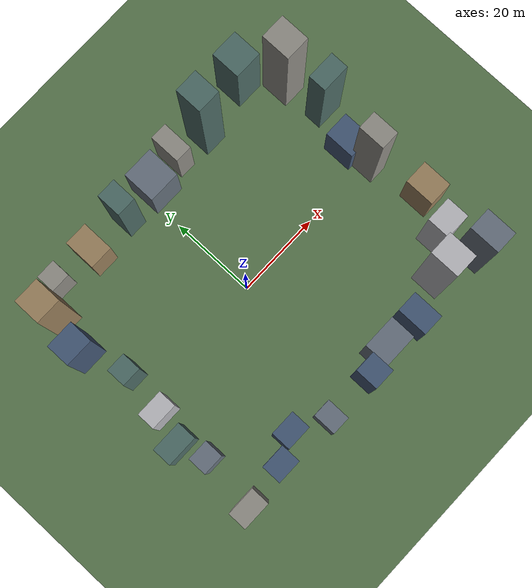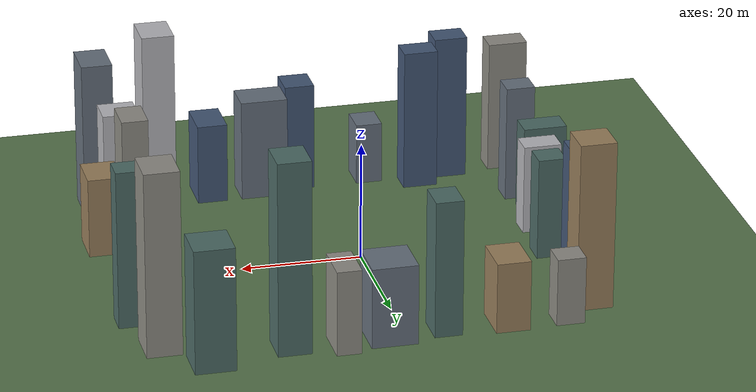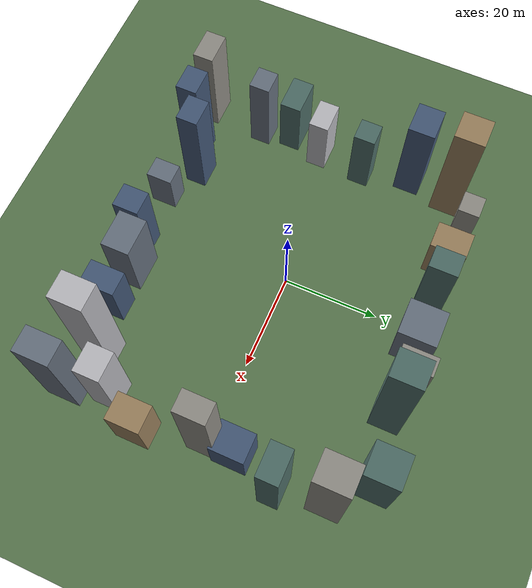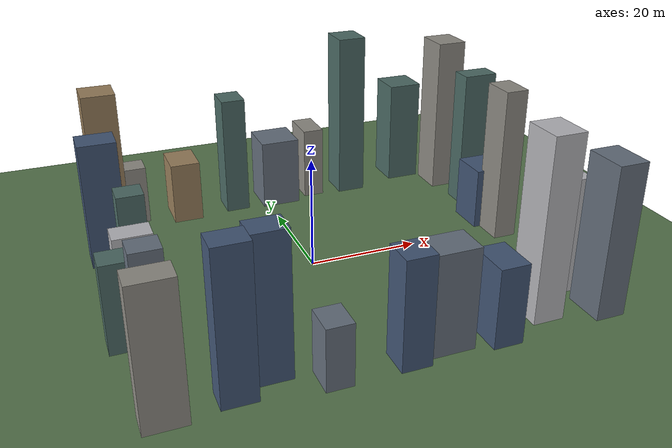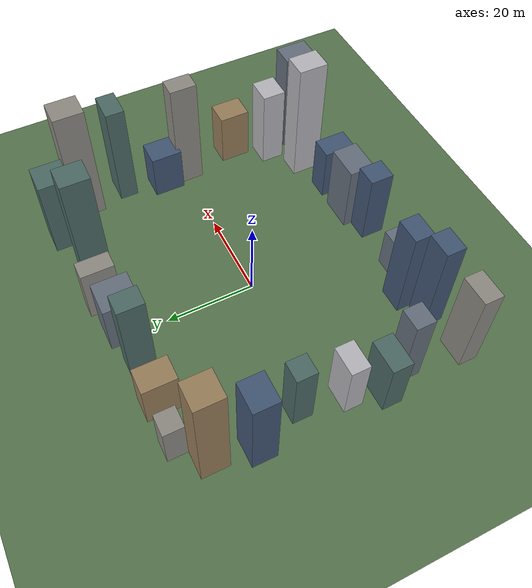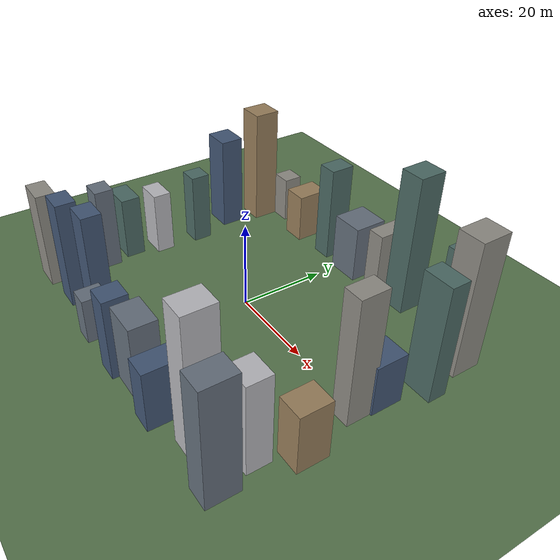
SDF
<?xml version="1.0" encoding="UTF-8"?>
<sdf version="1.9">
  <world name="demo">
    <physics type="ode">
      <max_step_size>0.004</max_step_size>
      <real_time_factor>1.0</real_time_factor>
      <real_time_update_rate>250</real_time_update_rate>
    </physics>
    <plugin name="gz::sim::systems::Physics" filename="gz-sim-physics-system"/>
    <plugin name="gz::sim::systems::UserCommands" filename="gz-sim-user-commands-system"/>
    <plugin name="gz::sim::systems::SceneBroadcaster" filename="gz-sim-scene-broadcaster-system"/>
    <plugin name="gz::sim::systems::Contact" filename="gz-sim-contact-system"/>
    <plugin name="gz::sim::systems::Imu" filename="gz-sim-imu-system"/>
    <plugin name="gz::sim::systems::AirPressure" filename="gz-sim-air-pressure-system"/>
    <plugin name="gz::sim::systems::ApplyLinkWrench" filename="gz-sim-apply-link-wrench-system"/>
    <plugin name="gz::sim::systems::NavSat" filename="gz-sim-navsat-system"/>
    <plugin name="gz::sim::systems::Sensors" filename="gz-sim-sensors-system">
      <render_engine>ogre2</render_engine>
    </plugin>
    <gui fullscreen="false">
      <!-- 3D scene -->
      <plugin filename="MinimalScene" name="3D View">
        <gz-gui>
          <title>3D View</title>
          <property type="bool" key="showTitleBar">false</property>
          <property type="string" key="state">docked</property>
        </gz-gui>
        <engine>ogre2</engine>
        <scene>scene</scene>
        <ambient_light>0.4 0.4 0.4</ambient_light>
        <background_color>0.55 0.72 0.90</background_color>
        <camera_pose>-6 0 6 0 0.5 0</camera_pose>
        <camera_clip>
          <near>0.25</near>
          <far>25000</far>
        </camera_clip>
      </plugin>
      <!-- Plugins that add functionality to the scene -->
      <plugin filename="EntityContextMenuPlugin" name="Entity context menu">
        <gz-gui>
          <property key="state" type="string">floating</property>
          <property key="width" type="double">5</property>
          <property key="height" type="double">5</property>
          <property key="showTitleBar" type="bool">false</property>
        </gz-gui>
      </plugin>
      <plugin filename="GzSceneManager" name="Scene Manager">
        <gz-gui>
          <property key="resizable" type="bool">false</property>
          <property key="width" type="double">5</property>
          <property key="height" type="double">5</property>
          <property key="state" type="string">floating</property>
          <property key="showTitleBar" type="bool">false</property>
        </gz-gui>
      </plugin>
      <plugin filename="InteractiveViewControl" name="Interactive view control">
        <gz-gui>
          <property key="resizable" type="bool">false</property>
          <property key="width" type="double">5</property>
          <property key="height" type="double">5</property>
          <property key="state" type="string">floating</property>
          <property key="showTitleBar" type="bool">false</property>
        </gz-gui>
      </plugin>
      <plugin filename="CameraTracking" name="Camera Tracking">
        <gz-gui>
          <property key="resizable" type="bool">false</property>
          <property key="width" type="double">5</property>
          <property key="height" type="double">5</property>
          <property key="state" type="string">floating</property>
          <property key="showTitleBar" type="bool">false</property>
        </gz-gui>
      </plugin>
      <plugin filename="MarkerManager" name="Marker manager">
        <gz-gui>
          <property key="resizable" type="bool">false</property>
          <property key="width" type="double">5</property>
          <property key="height" type="double">5</property>
          <property key="state" type="string">floating</property>
          <property key="showTitleBar" type="bool">false</property>
        </gz-gui>
      </plugin>
      <plugin filename="SelectEntities" name="Select Entities">
        <gz-gui>
          <anchors target="Select entities">
            <line own="right" target="right"/>
            <line own="top" target="top"/>
          </anchors>
          <property key="resizable" type="bool">false</property>
          <property key="width" type="double">5</property>
          <property key="height" type="double">5</property>
          <property key="state" type="string">floating</property>
          <property key="showTitleBar" type="bool">false</property>
        </gz-gui>
      </plugin>
      <plugin filename="VisualizationCapabilities" name="Visualization Capabilities">
        <gz-gui>
          <property key="resizable" type="bool">false</property>
          <property key="width" type="double">5</property>
          <property key="height" type="double">5</property>
          <property key="state" type="string">floating</property>
          <property key="showTitleBar" type="bool">false</property>
        </gz-gui>
      </plugin>
      <plugin filename="Spawn" name="Spawn Entities">
        <gz-gui>
          <anchors target="Select entities">
            <line own="right" target="right"/>
            <line own="top" target="top"/>
          </anchors>
          <property key="resizable" type="bool">false</property>
          <property key="width" type="double">5</property>
          <property key="height" type="double">5</property>
          <property key="state" type="string">floating</property>
          <property key="showTitleBar" type="bool">false</property>
        </gz-gui>
      </plugin>
      <plugin name="World control" filename="WorldControl">
        <gz-gui>
          <title>World control</title>
          <property type="bool" key="showTitleBar">0</property>
          <property type="bool" key="resizable">0</property>
          <property type="double" key="height">72</property>
          <property type="double" key="width">121</property>
          <property type="double" key="z">1</property>
          <property type="string" key="state">floating</property>
          <anchors target="3D View">
            <line own="left" target="left"/>
            <line own="bottom" target="bottom"/>
          </anchors>
        </gz-gui>
        <play_pause>1</play_pause>
        <step>1</step>
        <start_paused>1</start_paused>
      </plugin>
      <plugin name="World stats" filename="WorldStats">
        <gz-gui>
          <title>World stats</title>
          <property type="bool" key="showTitleBar">0</property>
          <property type="bool" key="resizable">0</property>
          <property type="double" key="height">110</property>
          <property type="double" key="width">290</property>
          <property type="double" key="z">1</property>
          <property type="string" key="state">floating</property>
          <anchors target="3D View">
            <line own="right" target="right"/>
            <line own="bottom" target="bottom"/>
          </anchors>
        </gz-gui>
        <sim_time>1</sim_time>
        <real_time>1</real_time>
        <real_time_factor>1</real_time_factor>
        <iterations>1</iterations>
      </plugin>
      <plugin name="Entity tree" filename="EntityTree"/>
    </gui>
    <gravity>0 0 -9.8</gravity>
    <magnetic_field>6e-06 2.3e-05 -4.2e-05</magnetic_field>
    <atmosphere type="adiabatic"/>
    <scene>
      <grid>false</grid>
      <ambient>0.4 0.4 0.4 1</ambient>
      <background>0.7 0.7 0.7 1</background>
      <shadows>true</shadows>
    </scene>
    <model name="ground_plane">
      <static>true</static>
      <link name="link">
        <collision name="collision">
          <geometry>
            <plane>
              <normal>0 0 1</normal>
              <size>1 1</size>
            </plane>
          </geometry>
          <surface>
            <friction>
              <ode/>
            </friction>
            <bounce/>
            <contact/>
          </surface>
        </collision>
        <visual name="visual">
          <geometry>
            <plane>
              <normal>0 0 1</normal>
              <size>100 100</size>
            </plane>
          </geometry>
          <material>
            <ambient>0.30 0.42 0.28 1</ambient>
            <diffuse>0.34 0.46 0.30 1</diffuse>
            <specular>0.10 0.12 0.10 1</specular>
          </material>
        </visual>
        <pose>0 0 0 0 -0 0</pose>
        <inertial>
          <pose>0 0 0 0 -0 0</pose>
          <mass>1</mass>
          <inertia>
            <ixx>1</ixx>
            <ixy>0</ixy>
            <ixz>0</ixz>
            <iyy>1</iyy>
            <iyz>0</iyz>
            <izz>1</izz>
          </inertia>
        </inertial>
        <enable_wind>false</enable_wind>
      </link>
      <pose>0 0 0 0 -0 0</pose>
      <self_collide>false</self_collide>
    </model>
    <light name="sunUTC" type="directional">
      <pose>0 0 500 0 -0 0</pose>
      <cast_shadows>true</cast_shadows>
      <intensity>1</intensity>
      <direction>0.001 0.625 -0.78</direction>
      <diffuse>0.904 0.904 0.904 1</diffuse>
      <specular>0.271 0.271 0.271 1</specular>
      <attenuation>
        <range>2000</range>
        <linear>0</linear>
        <constant>1</constant>
        <quadratic>0</quadratic>
      </attenuation>
      <spot>
        <inner_angle>0</inner_angle>
        <outer_angle>0</outer_angle>
        <falloff>0</falloff>
      </spot>
    </light>
    <spherical_coordinates>
      <surface_model>EARTH_WGS84</surface_model>
      <world_frame_orientation>ENU</world_frame_orientation>
      <latitude_deg>47.397971057728974</latitude_deg>
      <longitude_deg> 8.546163739800146</longitude_deg>
      <elevation>0</elevation>
    </spherical_coordinates>
      <model name="building_1">
      <static>true</static>
      <pose>-32.88 -31.75 11.43 0 0 0</pose>
      <link name="link">
        <collision name="collision">
          <geometry><box><size>6.60 4.29 22.86</size></box></geometry>
        </collision>
        <visual name="visual">
          <geometry><box><size>6.60 4.29 22.86</size></box></geometry>
          <material>
            <ambient>0.560 0.550 0.520 1</ambient>
            <diffuse>0.560 0.550 0.520 1</diffuse>
            <specular>0.710 0.700 0.670 1</specular>
          </material>
        </visual>
      </link>
    </model>
    <model name="building_2">
      <static>true</static>
      <pose>-31.59 -18.95 10.02 0 0 0</pose>
      <link name="link">
        <collision name="collision">
          <geometry><box><size>4.86 4.34 20.04</size></box></geometry>
        </collision>
        <visual name="visual">
          <geometry><box><size>4.86 4.34 20.04</size></box></geometry>
          <material>
            <ambient>0.400 0.440 0.490 1</ambient>
            <diffuse>0.400 0.440 0.490 1</diffuse>
            <specular>0.550 0.590 0.640 1</specular>
          </material>
        </visual>
      </link>
    </model>
    <model name="building_3">
      <static>true</static>
      <pose>-34.05 -12.38 7.68 0 0 0</pose>
      <link name="link">
        <collision name="collision">
          <geometry><box><size>7.31 4.50 15.36</size></box></geometry>
        </collision>
        <visual name="visual">
          <geometry><box><size>7.31 4.50 15.36</size></box></geometry>
          <material>
            <ambient>0.300 0.420 0.400 1</ambient>
            <diffuse>0.300 0.420 0.400 1</diffuse>
            <specular>0.450 0.570 0.550 1</specular>
          </material>
        </visual>
      </link>
    </model>
    <model name="building_4">
      <static>true</static>
      <pose>-31.59 -5.19 7.65 0 0 0</pose>
      <link name="link">
        <collision name="collision">
          <geometry><box><size>6.34 4.20 15.31</size></box></geometry>
        </collision>
        <visual name="visual">
          <geometry><box><size>6.34 4.20 15.31</size></box></geometry>
          <material>
            <ambient>0.720 0.720 0.740 1</ambient>
            <diffuse>0.720 0.720 0.740 1</diffuse>
            <specular>0.870 0.870 0.890 1</specular>
          </material>
        </visual>
      </link>
    </model>
    <model name="building_5">
      <static>true</static>
      <pose>-30.21 4.95 8.70 0 0 0</pose>
      <link name="link">
        <collision name="collision">
          <geometry><box><size>4.58 4.47 17.40</size></box></geometry>
        </collision>
        <visual name="visual">
          <geometry><box><size>4.58 4.47 17.40</size></box></geometry>
          <material>
            <ambient>0.300 0.420 0.400 1</ambient>
            <diffuse>0.300 0.420 0.400 1</diffuse>
            <specular>0.450 0.570 0.550 1</specular>
          </material>
        </visual>
      </link>
    </model>
    <model name="building_6">
      <static>true</static>
      <pose>-33.60 15.41 11.57 0 0 0</pose>
      <link name="link">
        <collision name="collision">
          <geometry><box><size>6.56 5.49 23.15</size></box></geometry>
        </collision>
        <visual name="visual">
          <geometry><box><size>6.56 5.49 23.15</size></box></geometry>
          <material>
            <ambient>0.260 0.340 0.460 1</ambient>
            <diffuse>0.260 0.340 0.460 1</diffuse>
            <specular>0.410 0.490 0.610 1</specular>
          </material>
        </visual>
      </link>
    </model>
    <model name="building_7">
      <static>true</static>
      <pose>-31.68 24.60 14.33 0 0 0</pose>
      <link name="link">
        <collision name="collision">
          <geometry><box><size>5.99 6.13 28.65</size></box></geometry>
        </collision>
        <visual name="visual">
          <geometry><box><size>5.99 6.13 28.65</size></box></geometry>
          <material>
            <ambient>0.600 0.500 0.360 1</ambient>
            <diffuse>0.600 0.500 0.360 1</diffuse>
            <specular>0.750 0.650 0.510 1</specular>
          </material>
        </visual>
      </link>
    </model>
    <model name="building_8">
      <static>true</static>
      <pose>38.43 -30.23 13.39 0 0 0</pose>
      <link name="link">
        <collision name="collision">
          <geometry><box><size>5.20 7.18 26.78</size></box></geometry>
        </collision>
        <visual name="visual">
          <geometry><box><size>5.20 7.18 26.78</size></box></geometry>
          <material>
            <ambient>0.400 0.440 0.490 1</ambient>
            <diffuse>0.400 0.440 0.490 1</diffuse>
            <specular>0.550 0.590 0.640 1</specular>
          </material>
        </visual>
      </link>
    </model>
    <model name="building_9">
      <static>true</static>
      <pose>35.91 -22.00 10.39 0 0 0</pose>
      <link name="link">
        <collision name="collision">
          <geometry><box><size>5.98 5.37 20.77</size></box></geometry>
        </collision>
        <visual name="visual">
          <geometry><box><size>5.98 5.37 20.77</size></box></geometry>
          <material>
            <ambient>0.720 0.720 0.740 1</ambient>
            <diffuse>0.720 0.720 0.740 1</diffuse>
            <specular>0.870 0.870 0.890 1</specular>
          </material>
        </visual>
      </link>
    </model>
    <model name="building_10">
      <static>true</static>
      <pose>40.40 -13.91 6.82 0 0 0</pose>
      <link name="link">
        <collision name="collision">
          <geometry><box><size>5.67 7.03 13.65</size></box></geometry>
        </collision>
        <visual name="visual">
          <geometry><box><size>5.67 7.03 13.65</size></box></geometry>
          <material>
            <ambient>0.600 0.500 0.360 1</ambient>
            <diffuse>0.600 0.500 0.360 1</diffuse>
            <specular>0.750 0.650 0.510 1</specular>
          </material>
        </visual>
      </link>
    </model>
    <model name="building_11">
      <static>true</static>
      <pose>37.61 -0.69 14.47 0 0 0</pose>
      <link name="link">
        <collision name="collision">
          <geometry><box><size>4.31 6.23 28.94</size></box></geometry>
        </collision>
        <visual name="visual">
          <geometry><box><size>4.31 6.23 28.94</size></box></geometry>
          <material>
            <ambient>0.560 0.550 0.520 1</ambient>
            <diffuse>0.560 0.550 0.520 1</diffuse>
            <specular>0.710 0.700 0.670 1</specular>
          </material>
        </visual>
      </link>
    </model>
    <model name="building_12">
      <static>true</static>
      <pose>37.20 5.25 5.83 0 0 0</pose>
      <link name="link">
        <collision name="collision">
          <geometry><box><size>5.99 7.19 11.65</size></box></geometry>
        </collision>
        <visual name="visual">
          <geometry><box><size>5.99 7.19 11.65</size></box></geometry>
          <material>
            <ambient>0.260 0.340 0.460 1</ambient>
            <diffuse>0.260 0.340 0.460 1</diffuse>
            <specular>0.410 0.490 0.610 1</specular>
          </material>
        </visual>
      </link>
    </model>
    <model name="building_13">
      <static>true</static>
      <pose>40.22 14.87 13.42 0 0 0</pose>
      <link name="link">
        <collision name="collision">
          <geometry><box><size>6.66 4.24 26.84</size></box></geometry>
        </collision>
        <visual name="visual">
          <geometry><box><size>6.66 4.24 26.84</size></box></geometry>
          <material>
            <ambient>0.300 0.420 0.400 1</ambient>
            <diffuse>0.300 0.420 0.400 1</diffuse>
            <specular>0.450 0.570 0.550 1</specular>
          </material>
        </visual>
      </link>
    </model>
    <model name="building_14">
      <static>true</static>
      <pose>38.39 24.91 15.64 0 0 0</pose>
      <link name="link">
        <collision name="collision">
          <geometry><box><size>5.78 6.87 31.29</size></box></geometry>
        </collision>
        <visual name="visual">
          <geometry><box><size>5.78 6.87 31.29</size></box></geometry>
          <material>
            <ambient>0.560 0.550 0.520 1</ambient>
            <diffuse>0.560 0.550 0.520 1</diffuse>
            <specular>0.710 0.700 0.670 1</specular>
          </material>
        </visual>
      </link>
    </model>
    <model name="building_15">
      <static>true</static>
      <pose>-26.39 29.81 5.71 0 0 0</pose>
      <link name="link">
        <collision name="collision">
          <geometry><box><size>4.67 4.47 11.41</size></box></geometry>
        </collision>
        <visual name="visual">
          <geometry><box><size>4.67 4.47 11.41</size></box></geometry>
          <material>
            <ambient>0.560 0.550 0.520 1</ambient>
            <diffuse>0.560 0.550 0.520 1</diffuse>
            <specular>0.710 0.700 0.670 1</specular>
          </material>
        </visual>
      </link>
    </model>
    <model name="building_16">
      <static>true</static>
      <pose>-16.85 28.74 5.97 0 0 0</pose>
      <link name="link">
        <collision name="collision">
          <geometry><box><size>5.56 7.49 11.93</size></box></geometry>
        </collision>
        <visual name="visual">
          <geometry><box><size>5.56 7.49 11.93</size></box></geometry>
          <material>
            <ambient>0.600 0.500 0.360 1</ambient>
            <diffuse>0.600 0.500 0.360 1</diffuse>
            <specular>0.750 0.650 0.510 1</specular>
          </material>
        </visual>
      </link>
    </model>
    <model name="building_17">
      <static>true</static>
      <pose>-6.49 28.89 11.60 0 0 0</pose>
      <link name="link">
        <collision name="collision">
          <geometry><box><size>4.55 5.72 23.21</size></box></geometry>
        </collision>
        <visual name="visual">
          <geometry><box><size>4.55 5.72 23.21</size></box></geometry>
          <material>
            <ambient>0.300 0.420 0.400 1</ambient>
            <diffuse>0.300 0.420 0.400 1</diffuse>
            <specular>0.450 0.570 0.550 1</specular>
          </material>
        </visual>
      </link>
    </model>
    <model name="building_18">
      <static>true</static>
      <pose>2.58 29.29 6.81 0 0 0</pose>
      <link name="link">
        <collision name="collision">
          <geometry><box><size>7.54 7.83 13.62</size></box></geometry>
        </collision>
        <visual name="visual">
          <geometry><box><size>7.54 7.83 13.62</size></box></geometry>
          <material>
            <ambient>0.400 0.440 0.490 1</ambient>
            <diffuse>0.400 0.440 0.490 1</diffuse>
            <specular>0.550 0.590 0.640 1</specular>
          </material>
        </visual>
      </link>
    </model>
    <model name="building_19">
      <static>true</static>
      <pose>10.26 30.79 7.19 0 0 0</pose>
      <link name="link">
        <collision name="collision">
          <geometry><box><size>4.05 7.32 14.38</size></box></geometry>
        </collision>
        <visual name="visual">
          <geometry><box><size>4.05 7.32 14.38</size></box></geometry>
          <material>
            <ambient>0.560 0.550 0.520 1</ambient>
            <diffuse>0.560 0.550 0.520 1</diffuse>
            <specular>0.710 0.700 0.670 1</specular>
          </material>
        </visual>
      </link>
    </model>
    <model name="building_20">
      <static>true</static>
      <pose>18.52 29.59 16.44 0 0 0</pose>
      <link name="link">
        <collision name="collision">
          <geometry><box><size>5.48 6.27 32.87</size></box></geometry>
        </collision>
        <visual name="visual">
          <geometry><box><size>5.48 6.27 32.87</size></box></geometry>
          <material>
            <ambient>0.300 0.420 0.400 1</ambient>
            <diffuse>0.300 0.420 0.400 1</diffuse>
            <specular>0.450 0.570 0.550 1</specular>
          </material>
        </visual>
      </link>
    </model>
    <model name="building_21">
      <static>true</static>
      <pose>31.80 32.25 10.48 0 0 0</pose>
      <link name="link">
        <collision name="collision">
          <geometry><box><size>6.62 6.96 20.96</size></box></geometry>
        </collision>
        <visual name="visual">
          <geometry><box><size>6.62 6.96 20.96</size></box></geometry>
          <material>
            <ambient>0.300 0.420 0.400 1</ambient>
            <diffuse>0.300 0.420 0.400 1</diffuse>
            <specular>0.450 0.570 0.550 1</specular>
          </material>
        </visual>
      </link>
    </model>
    <model name="building_22">
      <static>true</static>
      <pose>-22.51 -30.54 12.61 0 0 0</pose>
      <link name="link">
        <collision name="collision">
          <geometry><box><size>5.60 4.41 25.22</size></box></geometry>
        </collision>
        <visual name="visual">
          <geometry><box><size>5.60 4.41 25.22</size></box></geometry>
          <material>
            <ambient>0.260 0.340 0.460 1</ambient>
            <diffuse>0.260 0.340 0.460 1</diffuse>
            <specular>0.410 0.490 0.610 1</specular>
          </material>
        </visual>
      </link>
    </model>
    <model name="building_23">
      <static>true</static>
      <pose>-16.55 -27.58 12.21 0 0 0</pose>
      <link name="link">
        <collision name="collision">
          <geometry><box><size>5.76 4.44 24.42</size></box></geometry>
        </collision>
        <visual name="visual">
          <geometry><box><size>5.76 4.44 24.42</size></box></geometry>
          <material>
            <ambient>0.260 0.340 0.460 1</ambient>
            <diffuse>0.260 0.340 0.460 1</diffuse>
            <specular>0.410 0.490 0.610 1</specular>
          </material>
        </visual>
      </link>
    </model>
    <model name="building_24">
      <static>true</static>
      <pose>-8.50 -31.74 5.31 0 0 0</pose>
      <link name="link">
        <collision name="collision">
          <geometry><box><size>4.41 5.45 10.61</size></box></geometry>
        </collision>
        <visual name="visual">
          <geometry><box><size>4.41 5.45 10.61</size></box></geometry>
          <material>
            <ambient>0.400 0.440 0.490 1</ambient>
            <diffuse>0.400 0.440 0.490 1</diffuse>
            <specular>0.550 0.590 0.640 1</specular>
          </material>
        </visual>
      </link>
    </model>
    <model name="building_25">
      <static>true</static>
      <pose>3.57 -31.76 9.37 0 0 0</pose>
      <link name="link">
        <collision name="collision">
          <geometry><box><size>5.01 5.39 18.74</size></box></geometry>
        </collision>
        <visual name="visual">
          <geometry><box><size>5.01 5.39 18.74</size></box></geometry>
          <material>
            <ambient>0.260 0.340 0.460 1</ambient>
            <diffuse>0.260 0.340 0.460 1</diffuse>
            <specular>0.410 0.490 0.610 1</specular>
          </material>
        </visual>
      </link>
    </model>
    <model name="building_26">
      <static>true</static>
      <pose>10.08 -30.06 8.74 0 0 0</pose>
      <link name="link">
        <collision name="collision">
          <geometry><box><size>7.91 5.92 17.48</size></box></geometry>
        </collision>
        <visual name="visual">
          <geometry><box><size>7.91 5.92 17.48</size></box></geometry>
          <material>
            <ambient>0.400 0.440 0.490 1</ambient>
            <diffuse>0.400 0.440 0.490 1</diffuse>
            <specular>0.550 0.590 0.640 1</specular>
          </material>
        </visual>
      </link>
    </model>
    <model name="building_27">
      <static>true</static>
      <pose>19.01 -30.79 6.94 0 0 0</pose>
      <link name="link">
        <collision name="collision">
          <geometry><box><size>5.06 7.32 13.87</size></box></geometry>
        </collision>
        <visual name="visual">
          <geometry><box><size>5.06 7.32 13.87</size></box></geometry>
          <material>
            <ambient>0.260 0.340 0.460 1</ambient>
            <diffuse>0.260 0.340 0.460 1</diffuse>
            <specular>0.410 0.490 0.610 1</specular>
          </material>
        </visual>
      </link>
    </model>
    <model name="building_28">
      <static>true</static>
      <pose>28.53 -27.74 15.97 0 0 0</pose>
      <link name="link">
        <collision name="collision">
          <geometry><box><size>5.45 6.76 31.94</size></box></geometry>
        </collision>
        <visual name="visual">
          <geometry><box><size>5.45 6.76 31.94</size></box></geometry>
          <material>
            <ambient>0.720 0.720 0.740 1</ambient>
            <diffuse>0.720 0.720 0.740 1</diffuse>
            <specular>0.870 0.870 0.890 1</specular>
          </material>
        </visual>
      </link>
    </model>
  </world>
</sdf>
